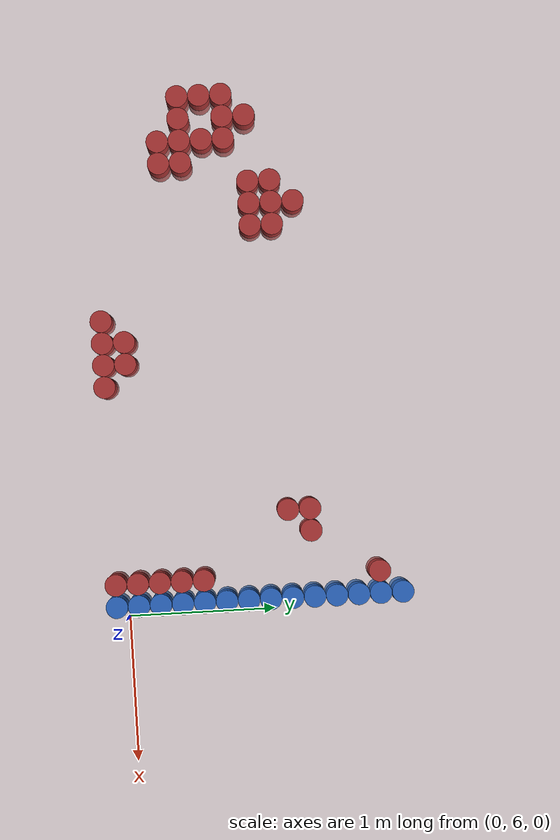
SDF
<sdf version="1.6">
 <world name="default">
  <model name="ground_plane">
   <static>1</static>
   <link name="link">
    <collision name="collision">
     <geometry><plane><normal>0 0 1</normal><size>100 100</size></plane></geometry>
     <surface><friction><ode><mu>100</mu><mu2>50</mu2></ode></friction></surface>
    </collision>
    <visual name="visual">
     <cast_shadows>0</cast_shadows>
     <geometry><plane><normal>0 0 1</normal><size>100 100</size></plane></geometry>
     <material>
      <script><uri>file://media/materials/scripts/gazebo.material</uri><name>Gazebo/Grey</name></script>
     </material>
    </visual>
   </link>
  </model>
  <model name="unit_cylinder_163">
   <static>1</static>
   <pose>-3.525000 6.525000 0.000000 0.000000 0.000000 0.000000</pose>
   <link name="link">
    <inertial>
     <mass>1</mass>
     <inertia><ixx>0.145833</ixx><ixy>0</ixy><ixz>0</ixz><iyy>0.145833</iyy><iyz>0</iyz><izz>0.125</izz></inertia>
    </inertial>
    <collision name="collision">
     <geometry><cylinder><radius>0.075000</radius><length>1</length></cylinder></geometry>
    </collision>
    <visual name="visual">
     <geometry><cylinder><radius>0.075000</radius><length>1</length></cylinder></geometry>
     <material>
      <ambient>0.648000 0.192000 0.192000 1</ambient>
      <diffuse>0.648000 0.192000 0.192000 1</diffuse>
     </material>
     <material>
      <script><name>Gazebo/Grey</name><uri>file://media/materials/scripts/gazebo.material</uri></script>
     </material>
    </visual>
   </link>
  </model>
  <model name="unit_cylinder_164">
   <static>1</static>
   <pose>-3.525000 6.675000 0.000000 0.000000 0.000000 0.000000</pose>
   <link name="link">
    <inertial>
     <mass>1</mass>
     <inertia><ixx>0.145833</ixx><ixy>0</ixy><ixz>0</ixz><iyy>0.145833</iyy><iyz>0</iyz><izz>0.125</izz></inertia>
    </inertial>
    <collision name="collision">
     <geometry><cylinder><radius>0.075000</radius><length>1</length></cylinder></geometry>
    </collision>
    <visual name="visual">
     <geometry><cylinder><radius>0.075000</radius><length>1</length></cylinder></geometry>
     <material>
      <ambient>0.648000 0.192000 0.192000 1</ambient>
      <diffuse>0.648000 0.192000 0.192000 1</diffuse>
     </material>
     <material>
      <script><name>Gazebo/Grey</name><uri>file://media/materials/scripts/gazebo.material</uri></script>
     </material>
    </visual>
   </link>
  </model>
  <model name="unit_cylinder_165">
   <static>1</static>
   <pose>-3.525000 6.825000 0.000000 0.000000 0.000000 0.000000</pose>
   <link name="link">
    <inertial>
     <mass>1</mass>
     <inertia><ixx>0.145833</ixx><ixy>0</ixy><ixz>0</ixz><iyy>0.145833</iyy><iyz>0</iyz><izz>0.125</izz></inertia>
    </inertial>
    <collision name="collision">
     <geometry><cylinder><radius>0.075000</radius><length>1</length></cylinder></geometry>
    </collision>
    <visual name="visual">
     <geometry><cylinder><radius>0.075000</radius><length>1</length></cylinder></geometry>
     <material>
      <ambient>0.648000 0.192000 0.192000 1</ambient>
      <diffuse>0.648000 0.192000 0.192000 1</diffuse>
     </material>
     <material>
      <script><name>Gazebo/Grey</name><uri>file://media/materials/scripts/gazebo.material</uri></script>
     </material>
    </visual>
   </link>
  </model>
  <model name="unit_cylinder_169">
   <static>1</static>
   <pose>-3.375000 6.525000 0.000000 0.000000 0.000000 0.000000</pose>
   <link name="link">
    <inertial>
     <mass>1</mass>
     <inertia><ixx>0.145833</ixx><ixy>0</ixy><ixz>0</ixz><iyy>0.145833</iyy><iyz>0</iyz><izz>0.125</izz></inertia>
    </inertial>
    <collision name="collision">
     <geometry><cylinder><radius>0.075000</radius><length>1</length></cylinder></geometry>
    </collision>
    <visual name="visual">
     <geometry><cylinder><radius>0.075000</radius><length>1</length></cylinder></geometry>
     <material>
      <ambient>0.648000 0.192000 0.192000 1</ambient>
      <diffuse>0.648000 0.192000 0.192000 1</diffuse>
     </material>
     <material>
      <script><name>Gazebo/Grey</name><uri>file://media/materials/scripts/gazebo.material</uri></script>
     </material>
    </visual>
   </link>
  </model>
  <model name="unit_cylinder_170">
   <static>1</static>
   <pose>-3.375000 6.825000 0.000000 0.000000 0.000000 0.000000</pose>
   <link name="link">
    <inertial>
     <mass>1</mass>
     <inertia><ixx>0.145833</ixx><ixy>0</ixy><ixz>0</ixz><iyy>0.145833</iyy><iyz>0</iyz><izz>0.125</izz></inertia>
    </inertial>
    <collision name="collision">
     <geometry><cylinder><radius>0.075000</radius><length>1</length></cylinder></geometry>
    </collision>
    <visual name="visual">
     <geometry><cylinder><radius>0.075000</radius><length>1</length></cylinder></geometry>
     <material>
      <ambient>0.648000 0.192000 0.192000 1</ambient>
      <diffuse>0.648000 0.192000 0.192000 1</diffuse>
     </material>
     <material>
      <script><name>Gazebo/Grey</name><uri>file://media/materials/scripts/gazebo.material</uri></script>
     </material>
    </visual>
   </link>
  </model>
  <model name="unit_cylinder_171">
   <static>1</static>
   <pose>-3.375000 6.975000 0.000000 0.000000 0.000000 0.000000</pose>
   <link name="link">
    <inertial>
     <mass>1</mass>
     <inertia><ixx>0.145833</ixx><ixy>0</ixy><ixz>0</ixz><iyy>0.145833</iyy><iyz>0</iyz><izz>0.125</izz></inertia>
    </inertial>
    <collision name="collision">
     <geometry><cylinder><radius>0.075000</radius><length>1</length></cylinder></geometry>
    </collision>
    <visual name="visual">
     <geometry><cylinder><radius>0.075000</radius><length>1</length></cylinder></geometry>
     <material>
      <ambient>0.648000 0.192000 0.192000 1</ambient>
      <diffuse>0.648000 0.192000 0.192000 1</diffuse>
     </material>
     <material>
      <script><name>Gazebo/Grey</name><uri>file://media/materials/scripts/gazebo.material</uri></script>
     </material>
    </visual>
   </link>
  </model>
  <model name="unit_cylinder_175">
   <static>1</static>
   <pose>-3.225000 6.375000 0.000000 0.000000 0.000000 0.000000</pose>
   <link name="link">
    <inertial>
     <mass>1</mass>
     <inertia><ixx>0.145833</ixx><ixy>0</ixy><ixz>0</ixz><iyy>0.145833</iyy><iyz>0</iyz><izz>0.125</izz></inertia>
    </inertial>
    <collision name="collision">
     <geometry><cylinder><radius>0.075000</radius><length>1</length></cylinder></geometry>
    </collision>
    <visual name="visual">
     <geometry><cylinder><radius>0.075000</radius><length>1</length></cylinder></geometry>
     <material>
      <ambient>0.648000 0.192000 0.192000 1</ambient>
      <diffuse>0.648000 0.192000 0.192000 1</diffuse>
     </material>
     <material>
      <script><name>Gazebo/Grey</name><uri>file://media/materials/scripts/gazebo.material</uri></script>
     </material>
    </visual>
   </link>
  </model>
  <model name="unit_cylinder_176">
   <static>1</static>
   <pose>-3.225000 6.525000 0.000000 0.000000 0.000000 0.000000</pose>
   <link name="link">
    <inertial>
     <mass>1</mass>
     <inertia><ixx>0.145833</ixx><ixy>0</ixy><ixz>0</ixz><iyy>0.145833</iyy><iyz>0</iyz><izz>0.125</izz></inertia>
    </inertial>
    <collision name="collision">
     <geometry><cylinder><radius>0.075000</radius><length>1</length></cylinder></geometry>
    </collision>
    <visual name="visual">
     <geometry><cylinder><radius>0.075000</radius><length>1</length></cylinder></geometry>
     <material>
      <ambient>0.648000 0.192000 0.192000 1</ambient>
      <diffuse>0.648000 0.192000 0.192000 1</diffuse>
     </material>
     <material>
      <script><name>Gazebo/Grey</name><uri>file://media/materials/scripts/gazebo.material</uri></script>
     </material>
    </visual>
   </link>
  </model>
  <model name="unit_cylinder_177">
   <static>1</static>
   <pose>-3.225000 6.675000 0.000000 0.000000 0.000000 0.000000</pose>
   <link name="link">
    <inertial>
     <mass>1</mass>
     <inertia><ixx>0.145833</ixx><ixy>0</ixy><ixz>0</ixz><iyy>0.145833</iyy><iyz>0</iyz><izz>0.125</izz></inertia>
    </inertial>
    <collision name="collision">
     <geometry><cylinder><radius>0.075000</radius><length>1</length></cylinder></geometry>
    </collision>
    <visual name="visual">
     <geometry><cylinder><radius>0.075000</radius><length>1</length></cylinder></geometry>
     <material>
      <ambient>0.648000 0.192000 0.192000 1</ambient>
      <diffuse>0.648000 0.192000 0.192000 1</diffuse>
     </material>
     <material>
      <script><name>Gazebo/Grey</name><uri>file://media/materials/scripts/gazebo.material</uri></script>
     </material>
    </visual>
   </link>
  </model>
  <model name="unit_cylinder_178">
   <static>1</static>
   <pose>-3.225000 6.825000 0.000000 0.000000 0.000000 0.000000</pose>
   <link name="link">
    <inertial>
     <mass>1</mass>
     <inertia><ixx>0.145833</ixx><ixy>0</ixy><ixz>0</ixz><iyy>0.145833</iyy><iyz>0</iyz><izz>0.125</izz></inertia>
    </inertial>
    <collision name="collision">
     <geometry><cylinder><radius>0.075000</radius><length>1</length></cylinder></geometry>
    </collision>
    <visual name="visual">
     <geometry><cylinder><radius>0.075000</radius><length>1</length></cylinder></geometry>
     <material>
      <ambient>0.648000 0.192000 0.192000 1</ambient>
      <diffuse>0.648000 0.192000 0.192000 1</diffuse>
     </material>
     <material>
      <script><name>Gazebo/Grey</name><uri>file://media/materials/scripts/gazebo.material</uri></script>
     </material>
    </visual>
   </link>
  </model>
  <model name="unit_cylinder_180">
   <static>1</static>
   <pose>-3.075000 6.375000 0.000000 0.000000 0.000000 0.000000</pose>
   <link name="link">
    <inertial>
     <mass>1</mass>
     <inertia><ixx>0.145833</ixx><ixy>0</ixy><ixz>0</ixz><iyy>0.145833</iyy><iyz>0</iyz><izz>0.125</izz></inertia>
    </inertial>
    <collision name="collision">
     <geometry><cylinder><radius>0.075000</radius><length>1</length></cylinder></geometry>
    </collision>
    <visual name="visual">
     <geometry><cylinder><radius>0.075000</radius><length>1</length></cylinder></geometry>
     <material>
      <ambient>0.648000 0.192000 0.192000 1</ambient>
      <diffuse>0.648000 0.192000 0.192000 1</diffuse>
     </material>
     <material>
      <script><name>Gazebo/Grey</name><uri>file://media/materials/scripts/gazebo.material</uri></script>
     </material>
    </visual>
   </link>
  </model>
  <model name="unit_cylinder_181">
   <static>1</static>
   <pose>-3.075000 6.525000 0.000000 0.000000 0.000000 0.000000</pose>
   <link name="link">
    <inertial>
     <mass>1</mass>
     <inertia><ixx>0.145833</ixx><ixy>0</ixy><ixz>0</ixz><iyy>0.145833</iyy><iyz>0</iyz><izz>0.125</izz></inertia>
    </inertial>
    <collision name="collision">
     <geometry><cylinder><radius>0.075000</radius><length>1</length></cylinder></geometry>
    </collision>
    <visual name="visual">
     <geometry><cylinder><radius>0.075000</radius><length>1</length></cylinder></geometry>
     <material>
      <ambient>0.648000 0.192000 0.192000 1</ambient>
      <diffuse>0.648000 0.192000 0.192000 1</diffuse>
     </material>
     <material>
      <script><name>Gazebo/Grey</name><uri>file://media/materials/scripts/gazebo.material</uri></script>
     </material>
    </visual>
   </link>
  </model>
  <model name="unit_cylinder_182">
   <static>1</static>
   <pose>-2.925000 6.975000 0.000000 0.000000 0.000000 0.000000</pose>
   <link name="link">
    <inertial>
     <mass>1</mass>
     <inertia><ixx>0.145833</ixx><ixy>0</ixy><ixz>0</ixz><iyy>0.145833</iyy><iyz>0</iyz><izz>0.125</izz></inertia>
    </inertial>
    <collision name="collision">
     <geometry><cylinder><radius>0.075000</radius><length>1</length></cylinder></geometry>
    </collision>
    <visual name="visual">
     <geometry><cylinder><radius>0.075000</radius><length>1</length></cylinder></geometry>
     <material>
      <ambient>0.648000 0.192000 0.192000 1</ambient>
      <diffuse>0.648000 0.192000 0.192000 1</diffuse>
     </material>
     <material>
      <script><name>Gazebo/Grey</name><uri>file://media/materials/scripts/gazebo.material</uri></script>
     </material>
    </visual>
   </link>
  </model>
  <model name="unit_cylinder_183">
   <static>1</static>
   <pose>-2.925000 7.125000 0.000000 0.000000 0.000000 0.000000</pose>
   <link name="link">
    <inertial>
     <mass>1</mass>
     <inertia><ixx>0.145833</ixx><ixy>0</ixy><ixz>0</ixz><iyy>0.145833</iyy><iyz>0</iyz><izz>0.125</izz></inertia>
    </inertial>
    <collision name="collision">
     <geometry><cylinder><radius>0.075000</radius><length>1</length></cylinder></geometry>
    </collision>
    <visual name="visual">
     <geometry><cylinder><radius>0.075000</radius><length>1</length></cylinder></geometry>
     <material>
      <ambient>0.648000 0.192000 0.192000 1</ambient>
      <diffuse>0.648000 0.192000 0.192000 1</diffuse>
     </material>
     <material>
      <script><name>Gazebo/Grey</name><uri>file://media/materials/scripts/gazebo.material</uri></script>
     </material>
    </visual>
   </link>
  </model>
  <model name="unit_cylinder_184">
   <static>1</static>
   <pose>-2.775000 6.975000 0.000000 0.000000 0.000000 0.000000</pose>
   <link name="link">
    <inertial>
     <mass>1</mass>
     <inertia><ixx>0.145833</ixx><ixy>0</ixy><ixz>0</ixz><iyy>0.145833</iyy><iyz>0</iyz><izz>0.125</izz></inertia>
    </inertial>
    <collision name="collision">
     <geometry><cylinder><radius>0.075000</radius><length>1</length></cylinder></geometry>
    </collision>
    <visual name="visual">
     <geometry><cylinder><radius>0.075000</radius><length>1</length></cylinder></geometry>
     <material>
      <ambient>0.648000 0.192000 0.192000 1</ambient>
      <diffuse>0.648000 0.192000 0.192000 1</diffuse>
     </material>
     <material>
      <script><name>Gazebo/Grey</name><uri>file://media/materials/scripts/gazebo.material</uri></script>
     </material>
    </visual>
   </link>
  </model>
  <model name="unit_cylinder_185">
   <static>1</static>
   <pose>-2.775000 7.125000 0.000000 0.000000 0.000000 0.000000</pose>
   <link name="link">
    <inertial>
     <mass>1</mass>
     <inertia><ixx>0.145833</ixx><ixy>0</ixy><ixz>0</ixz><iyy>0.145833</iyy><iyz>0</iyz><izz>0.125</izz></inertia>
    </inertial>
    <collision name="collision">
     <geometry><cylinder><radius>0.075000</radius><length>1</length></cylinder></geometry>
    </collision>
    <visual name="visual">
     <geometry><cylinder><radius>0.075000</radius><length>1</length></cylinder></geometry>
     <material>
      <ambient>0.648000 0.192000 0.192000 1</ambient>
      <diffuse>0.648000 0.192000 0.192000 1</diffuse>
     </material>
     <material>
      <script><name>Gazebo/Grey</name><uri>file://media/materials/scripts/gazebo.material</uri></script>
     </material>
    </visual>
   </link>
  </model>
  <model name="unit_cylinder_186">
   <static>1</static>
   <pose>-2.775000 7.275000 0.000000 0.000000 0.000000 0.000000</pose>
   <link name="link">
    <inertial>
     <mass>1</mass>
     <inertia><ixx>0.145833</ixx><ixy>0</ixy><ixz>0</ixz><iyy>0.145833</iyy><iyz>0</iyz><izz>0.125</izz></inertia>
    </inertial>
    <collision name="collision">
     <geometry><cylinder><radius>0.075000</radius><length>1</length></cylinder></geometry>
    </collision>
    <visual name="visual">
     <geometry><cylinder><radius>0.075000</radius><length>1</length></cylinder></geometry>
     <material>
      <ambient>0.648000 0.192000 0.192000 1</ambient>
      <diffuse>0.648000 0.192000 0.192000 1</diffuse>
     </material>
     <material>
      <script><name>Gazebo/Grey</name><uri>file://media/materials/scripts/gazebo.material</uri></script>
     </material>
    </visual>
   </link>
  </model>
  <model name="unit_cylinder_189">
   <static>1</static>
   <pose>-2.625000 6.975000 0.000000 0.000000 0.000000 0.000000</pose>
   <link name="link">
    <inertial>
     <mass>1</mass>
     <inertia><ixx>0.145833</ixx><ixy>0</ixy><ixz>0</ixz><iyy>0.145833</iyy><iyz>0</iyz><izz>0.125</izz></inertia>
    </inertial>
    <collision name="collision">
     <geometry><cylinder><radius>0.075000</radius><length>1</length></cylinder></geometry>
    </collision>
    <visual name="visual">
     <geometry><cylinder><radius>0.075000</radius><length>1</length></cylinder></geometry>
     <material>
      <ambient>0.648000 0.192000 0.192000 1</ambient>
      <diffuse>0.648000 0.192000 0.192000 1</diffuse>
     </material>
     <material>
      <script><name>Gazebo/Grey</name><uri>file://media/materials/scripts/gazebo.material</uri></script>
     </material>
    </visual>
   </link>
  </model>
  <model name="unit_cylinder_190">
   <static>1</static>
   <pose>-2.625000 7.125000 0.000000 0.000000 0.000000 0.000000</pose>
   <link name="link">
    <inertial>
     <mass>1</mass>
     <inertia><ixx>0.145833</ixx><ixy>0</ixy><ixz>0</ixz><iyy>0.145833</iyy><iyz>0</iyz><izz>0.125</izz></inertia>
    </inertial>
    <collision name="collision">
     <geometry><cylinder><radius>0.075000</radius><length>1</length></cylinder></geometry>
    </collision>
    <visual name="visual">
     <geometry><cylinder><radius>0.075000</radius><length>1</length></cylinder></geometry>
     <material>
      <ambient>0.648000 0.192000 0.192000 1</ambient>
      <diffuse>0.648000 0.192000 0.192000 1</diffuse>
     </material>
     <material>
      <script><name>Gazebo/Grey</name><uri>file://media/materials/scripts/gazebo.material</uri></script>
     </material>
    </visual>
   </link>
  </model>
  <model name="unit_cylinder_198">
   <static>1</static>
   <pose>-2.025000 5.925000 0.000000 0.000000 0.000000 0.000000</pose>
   <link name="link">
    <inertial>
     <mass>1</mass>
     <inertia><ixx>0.145833</ixx><ixy>0</ixy><ixz>0</ixz><iyy>0.145833</iyy><iyz>0</iyz><izz>0.125</izz></inertia>
    </inertial>
    <collision name="collision">
     <geometry><cylinder><radius>0.075000</radius><length>1</length></cylinder></geometry>
    </collision>
    <visual name="visual">
     <geometry><cylinder><radius>0.075000</radius><length>1</length></cylinder></geometry>
     <material>
      <ambient>0.648000 0.192000 0.192000 1</ambient>
      <diffuse>0.648000 0.192000 0.192000 1</diffuse>
     </material>
     <material>
      <script><name>Gazebo/Grey</name><uri>file://media/materials/scripts/gazebo.material</uri></script>
     </material>
    </visual>
   </link>
  </model>
  <model name="unit_cylinder_200">
   <static>1</static>
   <pose>-1.875000 5.925000 0.000000 0.000000 0.000000 0.000000</pose>
   <link name="link">
    <inertial>
     <mass>1</mass>
     <inertia><ixx>0.145833</ixx><ixy>0</ixy><ixz>0</ixz><iyy>0.145833</iyy><iyz>0</iyz><izz>0.125</izz></inertia>
    </inertial>
    <collision name="collision">
     <geometry><cylinder><radius>0.075000</radius><length>1</length></cylinder></geometry>
    </collision>
    <visual name="visual">
     <geometry><cylinder><radius>0.075000</radius><length>1</length></cylinder></geometry>
     <material>
      <ambient>0.648000 0.192000 0.192000 1</ambient>
      <diffuse>0.648000 0.192000 0.192000 1</diffuse>
     </material>
     <material>
      <script><name>Gazebo/Grey</name><uri>file://media/materials/scripts/gazebo.material</uri></script>
     </material>
    </visual>
   </link>
  </model>
  <model name="unit_cylinder_201">
   <static>1</static>
   <pose>-1.875000 6.075000 0.000000 0.000000 0.000000 0.000000</pose>
   <link name="link">
    <inertial>
     <mass>1</mass>
     <inertia><ixx>0.145833</ixx><ixy>0</ixy><ixz>0</ixz><iyy>0.145833</iyy><iyz>0</iyz><izz>0.125</izz></inertia>
    </inertial>
    <collision name="collision">
     <geometry><cylinder><radius>0.075000</radius><length>1</length></cylinder></geometry>
    </collision>
    <visual name="visual">
     <geometry><cylinder><radius>0.075000</radius><length>1</length></cylinder></geometry>
     <material>
      <ambient>0.648000 0.192000 0.192000 1</ambient>
      <diffuse>0.648000 0.192000 0.192000 1</diffuse>
     </material>
     <material>
      <script><name>Gazebo/Grey</name><uri>file://media/materials/scripts/gazebo.material</uri></script>
     </material>
    </visual>
   </link>
  </model>
  <model name="unit_cylinder_203">
   <static>1</static>
   <pose>-1.725000 5.925000 0.000000 0.000000 0.000000 0.000000</pose>
   <link name="link">
    <inertial>
     <mass>1</mass>
     <inertia><ixx>0.145833</ixx><ixy>0</ixy><ixz>0</ixz><iyy>0.145833</iyy><iyz>0</iyz><izz>0.125</izz></inertia>
    </inertial>
    <collision name="collision">
     <geometry><cylinder><radius>0.075000</radius><length>1</length></cylinder></geometry>
    </collision>
    <visual name="visual">
     <geometry><cylinder><radius>0.075000</radius><length>1</length></cylinder></geometry>
     <material>
      <ambient>0.648000 0.192000 0.192000 1</ambient>
      <diffuse>0.648000 0.192000 0.192000 1</diffuse>
     </material>
     <material>
      <script><name>Gazebo/Grey</name><uri>file://media/materials/scripts/gazebo.material</uri></script>
     </material>
    </visual>
   </link>
  </model>
  <model name="unit_cylinder_204">
   <static>1</static>
   <pose>-1.725000 6.075000 0.000000 0.000000 0.000000 0.000000</pose>
   <link name="link">
    <inertial>
     <mass>1</mass>
     <inertia><ixx>0.145833</ixx><ixy>0</ixy><ixz>0</ixz><iyy>0.145833</iyy><iyz>0</iyz><izz>0.125</izz></inertia>
    </inertial>
    <collision name="collision">
     <geometry><cylinder><radius>0.075000</radius><length>1</length></cylinder></geometry>
    </collision>
    <visual name="visual">
     <geometry><cylinder><radius>0.075000</radius><length>1</length></cylinder></geometry>
     <material>
      <ambient>0.648000 0.192000 0.192000 1</ambient>
      <diffuse>0.648000 0.192000 0.192000 1</diffuse>
     </material>
     <material>
      <script><name>Gazebo/Grey</name><uri>file://media/materials/scripts/gazebo.material</uri></script>
     </material>
    </visual>
   </link>
  </model>
  <model name="unit_cylinder_210">
   <static>1</static>
   <pose>-1.575000 5.925000 0.000000 0.000000 0.000000 0.000000</pose>
   <link name="link">
    <inertial>
     <mass>1</mass>
     <inertia><ixx>0.145833</ixx><ixy>0</ixy><ixz>0</ixz><iyy>0.145833</iyy><iyz>0</iyz><izz>0.125</izz></inertia>
    </inertial>
    <collision name="collision">
     <geometry><cylinder><radius>0.075000</radius><length>1</length></cylinder></geometry>
    </collision>
    <visual name="visual">
     <geometry><cylinder><radius>0.075000</radius><length>1</length></cylinder></geometry>
     <material>
      <ambient>0.648000 0.192000 0.192000 1</ambient>
      <diffuse>0.648000 0.192000 0.192000 1</diffuse>
     </material>
     <material>
      <script><name>Gazebo/Grey</name><uri>file://media/materials/scripts/gazebo.material</uri></script>
     </material>
    </visual>
   </link>
  </model>
  <model name="unit_cylinder_237">
   <static>1</static>
   <pose>-0.675000 7.125000 0.000000 0.000000 0.000000 0.000000</pose>
   <link name="link">
    <inertial>
     <mass>1</mass>
     <inertia><ixx>0.145833</ixx><ixy>0</ixy><ixz>0</ixz><iyy>0.145833</iyy><iyz>0</iyz><izz>0.125</izz></inertia>
    </inertial>
    <collision name="collision">
     <geometry><cylinder><radius>0.075000</radius><length>1</length></cylinder></geometry>
    </collision>
    <visual name="visual">
     <geometry><cylinder><radius>0.075000</radius><length>1</length></cylinder></geometry>
     <material>
      <ambient>0.648000 0.192000 0.192000 1</ambient>
      <diffuse>0.648000 0.192000 0.192000 1</diffuse>
     </material>
     <material>
      <script><name>Gazebo/Grey</name><uri>file://media/materials/scripts/gazebo.material</uri></script>
     </material>
    </visual>
   </link>
  </model>
  <model name="unit_cylinder_238">
   <static>1</static>
   <pose>-0.675000 7.275000 0.000000 0.000000 0.000000 0.000000</pose>
   <link name="link">
    <inertial>
     <mass>1</mass>
     <inertia><ixx>0.145833</ixx><ixy>0</ixy><ixz>0</ixz><iyy>0.145833</iyy><iyz>0</iyz><izz>0.125</izz></inertia>
    </inertial>
    <collision name="collision">
     <geometry><cylinder><radius>0.075000</radius><length>1</length></cylinder></geometry>
    </collision>
    <visual name="visual">
     <geometry><cylinder><radius>0.075000</radius><length>1</length></cylinder></geometry>
     <material>
      <ambient>0.648000 0.192000 0.192000 1</ambient>
      <diffuse>0.648000 0.192000 0.192000 1</diffuse>
     </material>
     <material>
      <script><name>Gazebo/Grey</name><uri>file://media/materials/scripts/gazebo.material</uri></script>
     </material>
    </visual>
   </link>
  </model>
  <model name="unit_cylinder_240">
   <static>1</static>
   <pose>-0.525000 7.275000 0.000000 0.000000 0.000000 0.000000</pose>
   <link name="link">
    <inertial>
     <mass>1</mass>
     <inertia><ixx>0.145833</ixx><ixy>0</ixy><ixz>0</ixz><iyy>0.145833</iyy><iyz>0</iyz><izz>0.125</izz></inertia>
    </inertial>
    <collision name="collision">
     <geometry><cylinder><radius>0.075000</radius><length>1</length></cylinder></geometry>
    </collision>
    <visual name="visual">
     <geometry><cylinder><radius>0.075000</radius><length>1</length></cylinder></geometry>
     <material>
      <ambient>0.648000 0.192000 0.192000 1</ambient>
      <diffuse>0.648000 0.192000 0.192000 1</diffuse>
     </material>
     <material>
      <script><name>Gazebo/Grey</name><uri>file://media/materials/scripts/gazebo.material</uri></script>
     </material>
    </visual>
   </link>
  </model>
  <model name="unit_cylinder_248">
   <static>1</static>
   <pose>-0.225000 5.925000 0.000000 0.000000 0.000000 0.000000</pose>
   <link name="link">
    <inertial>
     <mass>1</mass>
     <inertia><ixx>0.145833</ixx><ixy>0</ixy><ixz>0</ixz><iyy>0.145833</iyy><iyz>0</iyz><izz>0.125</izz></inertia>
    </inertial>
    <collision name="collision">
     <geometry><cylinder><radius>0.075000</radius><length>1</length></cylinder></geometry>
    </collision>
    <visual name="visual">
     <geometry><cylinder><radius>0.075000</radius><length>1</length></cylinder></geometry>
     <material>
      <ambient>0.648000 0.192000 0.192000 1</ambient>
      <diffuse>0.648000 0.192000 0.192000 1</diffuse>
     </material>
     <material>
      <script><name>Gazebo/Grey</name><uri>file://media/materials/scripts/gazebo.material</uri></script>
     </material>
    </visual>
   </link>
  </model>
  <model name="unit_cylinder_249">
   <static>1</static>
   <pose>-0.225000 6.075000 0.000000 0.000000 0.000000 0.000000</pose>
   <link name="link">
    <inertial>
     <mass>1</mass>
     <inertia><ixx>0.145833</ixx><ixy>0</ixy><ixz>0</ixz><iyy>0.145833</iyy><iyz>0</iyz><izz>0.125</izz></inertia>
    </inertial>
    <collision name="collision">
     <geometry><cylinder><radius>0.075000</radius><length>1</length></cylinder></geometry>
    </collision>
    <visual name="visual">
     <geometry><cylinder><radius>0.075000</radius><length>1</length></cylinder></geometry>
     <material>
      <ambient>0.648000 0.192000 0.192000 1</ambient>
      <diffuse>0.648000 0.192000 0.192000 1</diffuse>
     </material>
     <material>
      <script><name>Gazebo/Grey</name><uri>file://media/materials/scripts/gazebo.material</uri></script>
     </material>
    </visual>
   </link>
  </model>
  <model name="unit_cylinder_250">
   <static>1</static>
   <pose>-0.225000 6.225000 0.000000 0.000000 0.000000 0.000000</pose>
   <link name="link">
    <inertial>
     <mass>1</mass>
     <inertia><ixx>0.145833</ixx><ixy>0</ixy><ixz>0</ixz><iyy>0.145833</iyy><iyz>0</iyz><izz>0.125</izz></inertia>
    </inertial>
    <collision name="collision">
     <geometry><cylinder><radius>0.075000</radius><length>1</length></cylinder></geometry>
    </collision>
    <visual name="visual">
     <geometry><cylinder><radius>0.075000</radius><length>1</length></cylinder></geometry>
     <material>
      <ambient>0.648000 0.192000 0.192000 1</ambient>
      <diffuse>0.648000 0.192000 0.192000 1</diffuse>
     </material>
     <material>
      <script><name>Gazebo/Grey</name><uri>file://media/materials/scripts/gazebo.material</uri></script>
     </material>
    </visual>
   </link>
  </model>
  <model name="unit_cylinder_251">
   <static>1</static>
   <pose>-0.225000 6.375000 0.000000 0.000000 0.000000 0.000000</pose>
   <link name="link">
    <inertial>
     <mass>1</mass>
     <inertia><ixx>0.145833</ixx><ixy>0</ixy><ixz>0</ixz><iyy>0.145833</iyy><iyz>0</iyz><izz>0.125</izz></inertia>
    </inertial>
    <collision name="collision">
     <geometry><cylinder><radius>0.075000</radius><length>1</length></cylinder></geometry>
    </collision>
    <visual name="visual">
     <geometry><cylinder><radius>0.075000</radius><length>1</length></cylinder></geometry>
     <material>
      <ambient>0.648000 0.192000 0.192000 1</ambient>
      <diffuse>0.648000 0.192000 0.192000 1</diffuse>
     </material>
     <material>
      <script><name>Gazebo/Grey</name><uri>file://media/materials/scripts/gazebo.material</uri></script>
     </material>
    </visual>
   </link>
  </model>
  <model name="unit_cylinder_252">
   <static>1</static>
   <pose>-0.225000 6.525000 0.000000 0.000000 0.000000 0.000000</pose>
   <link name="link">
    <inertial>
     <mass>1</mass>
     <inertia><ixx>0.145833</ixx><ixy>0</ixy><ixz>0</ixz><iyy>0.145833</iyy><iyz>0</iyz><izz>0.125</izz></inertia>
    </inertial>
    <collision name="collision">
     <geometry><cylinder><radius>0.075000</radius><length>1</length></cylinder></geometry>
    </collision>
    <visual name="visual">
     <geometry><cylinder><radius>0.075000</radius><length>1</length></cylinder></geometry>
     <material>
      <ambient>0.648000 0.192000 0.192000 1</ambient>
      <diffuse>0.648000 0.192000 0.192000 1</diffuse>
     </material>
     <material>
      <script><name>Gazebo/Grey</name><uri>file://media/materials/scripts/gazebo.material</uri></script>
     </material>
    </visual>
   </link>
  </model>
  <model name="unit_cylinder_253">
   <static>1</static>
   <pose>-0.225000 7.725000 0.000000 0.000000 0.000000 0.000000</pose>
   <link name="link">
    <inertial>
     <mass>1</mass>
     <inertia><ixx>0.145833</ixx><ixy>0</ixy><ixz>0</ixz><iyy>0.145833</iyy><iyz>0</iyz><izz>0.125</izz></inertia>
    </inertial>
    <collision name="collision">
     <geometry><cylinder><radius>0.075000</radius><length>1</length></cylinder></geometry>
    </collision>
    <visual name="visual">
     <geometry><cylinder><radius>0.075000</radius><length>1</length></cylinder></geometry>
     <material>
      <ambient>0.648000 0.192000 0.192000 1</ambient>
      <diffuse>0.648000 0.192000 0.192000 1</diffuse>
     </material>
     <material>
      <script><name>Gazebo/Grey</name><uri>file://media/materials/scripts/gazebo.material</uri></script>
     </material>
    </visual>
   </link>
  </model>
  <model name="unit_cylinder_266">
   <static>1</static>
   <pose>-0.075000 5.925000 0.000000 0.000000 0.000000 0.000000</pose>
   <link name="link">
    <inertial>
     <mass>1</mass>
     <inertia><ixx>0.145833</ixx><ixy>0</ixy><ixz>0</ixz><iyy>0.145833</iyy><iyz>0</iyz><izz>0.125</izz></inertia>
    </inertial>
    <collision name="collision">
     <geometry><cylinder><radius>0.075000</radius><length>1</length></cylinder></geometry>
    </collision>
    <visual name="visual">
     <geometry><cylinder><radius>0.075000</radius><length>1</length></cylinder></geometry>
     <material>
      <ambient>0.152000 0.379000 0.720000 1</ambient>
      <diffuse>0.152000 0.379000 0.720000 1</diffuse>
     </material>
     <material>
      <script><name>Gazebo/Grey</name><uri>file://media/materials/scripts/gazebo.material</uri></script>
     </material>
    </visual>
   </link>
  </model>
  <model name="unit_cylinder_267">
   <static>1</static>
   <pose>-0.075000 6.075000 0.000000 0.000000 0.000000 0.000000</pose>
   <link name="link">
    <inertial>
     <mass>1</mass>
     <inertia><ixx>0.145833</ixx><ixy>0</ixy><ixz>0</ixz><iyy>0.145833</iyy><iyz>0</iyz><izz>0.125</izz></inertia>
    </inertial>
    <collision name="collision">
     <geometry><cylinder><radius>0.075000</radius><length>1</length></cylinder></geometry>
    </collision>
    <visual name="visual">
     <geometry><cylinder><radius>0.075000</radius><length>1</length></cylinder></geometry>
     <material>
      <ambient>0.152000 0.379000 0.720000 1</ambient>
      <diffuse>0.152000 0.379000 0.720000 1</diffuse>
     </material>
     <material>
      <script><name>Gazebo/Grey</name><uri>file://media/materials/scripts/gazebo.material</uri></script>
     </material>
    </visual>
   </link>
  </model>
  <model name="unit_cylinder_268">
   <static>1</static>
   <pose>-0.075000 6.225000 0.000000 0.000000 0.000000 0.000000</pose>
   <link name="link">
    <inertial>
     <mass>1</mass>
     <inertia><ixx>0.145833</ixx><ixy>0</ixy><ixz>0</ixz><iyy>0.145833</iyy><iyz>0</iyz><izz>0.125</izz></inertia>
    </inertial>
    <collision name="collision">
     <geometry><cylinder><radius>0.075000</radius><length>1</length></cylinder></geometry>
    </collision>
    <visual name="visual">
     <geometry><cylinder><radius>0.075000</radius><length>1</length></cylinder></geometry>
     <material>
      <ambient>0.152000 0.379000 0.720000 1</ambient>
      <diffuse>0.152000 0.379000 0.720000 1</diffuse>
     </material>
     <material>
      <script><name>Gazebo/Grey</name><uri>file://media/materials/scripts/gazebo.material</uri></script>
     </material>
    </visual>
   </link>
  </model>
  <model name="unit_cylinder_269">
   <static>1</static>
   <pose>-0.075000 6.375000 0.000000 0.000000 0.000000 0.000000</pose>
   <link name="link">
    <inertial>
     <mass>1</mass>
     <inertia><ixx>0.145833</ixx><ixy>0</ixy><ixz>0</ixz><iyy>0.145833</iyy><iyz>0</iyz><izz>0.125</izz></inertia>
    </inertial>
    <collision name="collision">
     <geometry><cylinder><radius>0.075000</radius><length>1</length></cylinder></geometry>
    </collision>
    <visual name="visual">
     <geometry><cylinder><radius>0.075000</radius><length>1</length></cylinder></geometry>
     <material>
      <ambient>0.152000 0.379000 0.720000 1</ambient>
      <diffuse>0.152000 0.379000 0.720000 1</diffuse>
     </material>
     <material>
      <script><name>Gazebo/Grey</name><uri>file://media/materials/scripts/gazebo.material</uri></script>
     </material>
    </visual>
   </link>
  </model>
  <model name="unit_cylinder_270">
   <static>1</static>
   <pose>-0.075000 6.525000 0.000000 0.000000 0.000000 0.000000</pose>
   <link name="link">
    <inertial>
     <mass>1</mass>
     <inertia><ixx>0.145833</ixx><ixy>0</ixy><ixz>0</ixz><iyy>0.145833</iyy><iyz>0</iyz><izz>0.125</izz></inertia>
    </inertial>
    <collision name="collision">
     <geometry><cylinder><radius>0.075000</radius><length>1</length></cylinder></geometry>
    </collision>
    <visual name="visual">
     <geometry><cylinder><radius>0.075000</radius><length>1</length></cylinder></geometry>
     <material>
      <ambient>0.152000 0.379000 0.720000 1</ambient>
      <diffuse>0.152000 0.379000 0.720000 1</diffuse>
     </material>
     <material>
      <script><name>Gazebo/Grey</name><uri>file://media/materials/scripts/gazebo.material</uri></script>
     </material>
    </visual>
   </link>
  </model>
  <model name="unit_cylinder_271">
   <static>1</static>
   <pose>-0.075000 6.675000 0.000000 0.000000 0.000000 0.000000</pose>
   <link name="link">
    <inertial>
     <mass>1</mass>
     <inertia><ixx>0.145833</ixx><ixy>0</ixy><ixz>0</ixz><iyy>0.145833</iyy><iyz>0</iyz><izz>0.125</izz></inertia>
    </inertial>
    <collision name="collision">
     <geometry><cylinder><radius>0.075000</radius><length>1</length></cylinder></geometry>
    </collision>
    <visual name="visual">
     <geometry><cylinder><radius>0.075000</radius><length>1</length></cylinder></geometry>
     <material>
      <ambient>0.152000 0.379000 0.720000 1</ambient>
      <diffuse>0.152000 0.379000 0.720000 1</diffuse>
     </material>
     <material>
      <script><name>Gazebo/Grey</name><uri>file://media/materials/scripts/gazebo.material</uri></script>
     </material>
    </visual>
   </link>
  </model>
  <model name="unit_cylinder_272">
   <static>1</static>
   <pose>-0.075000 6.825000 0.000000 0.000000 0.000000 0.000000</pose>
   <link name="link">
    <inertial>
     <mass>1</mass>
     <inertia><ixx>0.145833</ixx><ixy>0</ixy><ixz>0</ixz><iyy>0.145833</iyy><iyz>0</iyz><izz>0.125</izz></inertia>
    </inertial>
    <collision name="collision">
     <geometry><cylinder><radius>0.075000</radius><length>1</length></cylinder></geometry>
    </collision>
    <visual name="visual">
     <geometry><cylinder><radius>0.075000</radius><length>1</length></cylinder></geometry>
     <material>
      <ambient>0.152000 0.379000 0.720000 1</ambient>
      <diffuse>0.152000 0.379000 0.720000 1</diffuse>
     </material>
     <material>
      <script><name>Gazebo/Grey</name><uri>file://media/materials/scripts/gazebo.material</uri></script>
     </material>
    </visual>
   </link>
  </model>
  <model name="unit_cylinder_273">
   <static>1</static>
   <pose>-0.075000 6.975000 0.000000 0.000000 0.000000 0.000000</pose>
   <link name="link">
    <inertial>
     <mass>1</mass>
     <inertia><ixx>0.145833</ixx><ixy>0</ixy><ixz>0</ixz><iyy>0.145833</iyy><iyz>0</iyz><izz>0.125</izz></inertia>
    </inertial>
    <collision name="collision">
     <geometry><cylinder><radius>0.075000</radius><length>1</length></cylinder></geometry>
    </collision>
    <visual name="visual">
     <geometry><cylinder><radius>0.075000</radius><length>1</length></cylinder></geometry>
     <material>
      <ambient>0.152000 0.379000 0.720000 1</ambient>
      <diffuse>0.152000 0.379000 0.720000 1</diffuse>
     </material>
     <material>
      <script><name>Gazebo/Grey</name><uri>file://media/materials/scripts/gazebo.material</uri></script>
     </material>
    </visual>
   </link>
  </model>
  <model name="unit_cylinder_274">
   <static>1</static>
   <pose>-0.075000 7.125000 0.000000 0.000000 0.000000 0.000000</pose>
   <link name="link">
    <inertial>
     <mass>1</mass>
     <inertia><ixx>0.145833</ixx><ixy>0</ixy><ixz>0</ixz><iyy>0.145833</iyy><iyz>0</iyz><izz>0.125</izz></inertia>
    </inertial>
    <collision name="collision">
     <geometry><cylinder><radius>0.075000</radius><length>1</length></cylinder></geometry>
    </collision>
    <visual name="visual">
     <geometry><cylinder><radius>0.075000</radius><length>1</length></cylinder></geometry>
     <material>
      <ambient>0.152000 0.379000 0.720000 1</ambient>
      <diffuse>0.152000 0.379000 0.720000 1</diffuse>
     </material>
     <material>
      <script><name>Gazebo/Grey</name><uri>file://media/materials/scripts/gazebo.material</uri></script>
     </material>
    </visual>
   </link>
  </model>
  <model name="unit_cylinder_275">
   <static>1</static>
   <pose>-0.075000 7.275000 0.000000 0.000000 0.000000 0.000000</pose>
   <link name="link">
    <inertial>
     <mass>1</mass>
     <inertia><ixx>0.145833</ixx><ixy>0</ixy><ixz>0</ixz><iyy>0.145833</iyy><iyz>0</iyz><izz>0.125</izz></inertia>
    </inertial>
    <collision name="collision">
     <geometry><cylinder><radius>0.075000</radius><length>1</length></cylinder></geometry>
    </collision>
    <visual name="visual">
     <geometry><cylinder><radius>0.075000</radius><length>1</length></cylinder></geometry>
     <material>
      <ambient>0.152000 0.379000 0.720000 1</ambient>
      <diffuse>0.152000 0.379000 0.720000 1</diffuse>
     </material>
     <material>
      <script><name>Gazebo/Grey</name><uri>file://media/materials/scripts/gazebo.material</uri></script>
     </material>
    </visual>
   </link>
  </model>
  <model name="unit_cylinder_276">
   <static>1</static>
   <pose>-0.075000 7.425000 0.000000 0.000000 0.000000 0.000000</pose>
   <link name="link">
    <inertial>
     <mass>1</mass>
     <inertia><ixx>0.145833</ixx><ixy>0</ixy><ixz>0</ixz><iyy>0.145833</iyy><iyz>0</iyz><izz>0.125</izz></inertia>
    </inertial>
    <collision name="collision">
     <geometry><cylinder><radius>0.075000</radius><length>1</length></cylinder></geometry>
    </collision>
    <visual name="visual">
     <geometry><cylinder><radius>0.075000</radius><length>1</length></cylinder></geometry>
     <material>
      <ambient>0.152000 0.379000 0.720000 1</ambient>
      <diffuse>0.152000 0.379000 0.720000 1</diffuse>
     </material>
     <material>
      <script><name>Gazebo/Grey</name><uri>file://media/materials/scripts/gazebo.material</uri></script>
     </material>
    </visual>
   </link>
  </model>
  <model name="unit_cylinder_277">
   <static>1</static>
   <pose>-0.075000 7.575000 0.000000 0.000000 0.000000 0.000000</pose>
   <link name="link">
    <inertial>
     <mass>1</mass>
     <inertia><ixx>0.145833</ixx><ixy>0</ixy><ixz>0</ixz><iyy>0.145833</iyy><iyz>0</iyz><izz>0.125</izz></inertia>
    </inertial>
    <collision name="collision">
     <geometry><cylinder><radius>0.075000</radius><length>1</length></cylinder></geometry>
    </collision>
    <visual name="visual">
     <geometry><cylinder><radius>0.075000</radius><length>1</length></cylinder></geometry>
     <material>
      <ambient>0.152000 0.379000 0.720000 1</ambient>
      <diffuse>0.152000 0.379000 0.720000 1</diffuse>
     </material>
     <material>
      <script><name>Gazebo/Grey</name><uri>file://media/materials/scripts/gazebo.material</uri></script>
     </material>
    </visual>
   </link>
  </model>
  <model name="unit_cylinder_278">
   <static>1</static>
   <pose>-0.075000 7.725000 0.000000 0.000000 0.000000 0.000000</pose>
   <link name="link">
    <inertial>
     <mass>1</mass>
     <inertia><ixx>0.145833</ixx><ixy>0</ixy><ixz>0</ixz><iyy>0.145833</iyy><iyz>0</iyz><izz>0.125</izz></inertia>
    </inertial>
    <collision name="collision">
     <geometry><cylinder><radius>0.075000</radius><length>1</length></cylinder></geometry>
    </collision>
    <visual name="visual">
     <geometry><cylinder><radius>0.075000</radius><length>1</length></cylinder></geometry>
     <material>
      <ambient>0.152000 0.379000 0.720000 1</ambient>
      <diffuse>0.152000 0.379000 0.720000 1</diffuse>
     </material>
     <material>
      <script><name>Gazebo/Grey</name><uri>file://media/materials/scripts/gazebo.material</uri></script>
     </material>
    </visual>
   </link>
  </model>
  <model name="unit_cylinder_279">
   <static>1</static>
   <pose>-0.075000 7.875000 0.000000 0.000000 0.000000 0.000000</pose>
   <link name="link">
    <inertial>
     <mass>1</mass>
     <inertia><ixx>0.145833</ixx><ixy>0</ixy><ixz>0</ixz><iyy>0.145833</iyy><iyz>0</iyz><izz>0.125</izz></inertia>
    </inertial>
    <collision name="collision">
     <geometry><cylinder><radius>0.075000</radius><length>1</length></cylinder></geometry>
    </collision>
    <visual name="visual">
     <geometry><cylinder><radius>0.075000</radius><length>1</length></cylinder></geometry>
     <material>
      <ambient>0.152000 0.379000 0.720000 1</ambient>
      <diffuse>0.152000 0.379000 0.720000 1</diffuse>
     </material>
     <material>
      <script><name>Gazebo/Grey</name><uri>file://media/materials/scripts/gazebo.material</uri></script>
     </material>
    </visual>
   </link>
  </model>
 </world>
</sdf>
